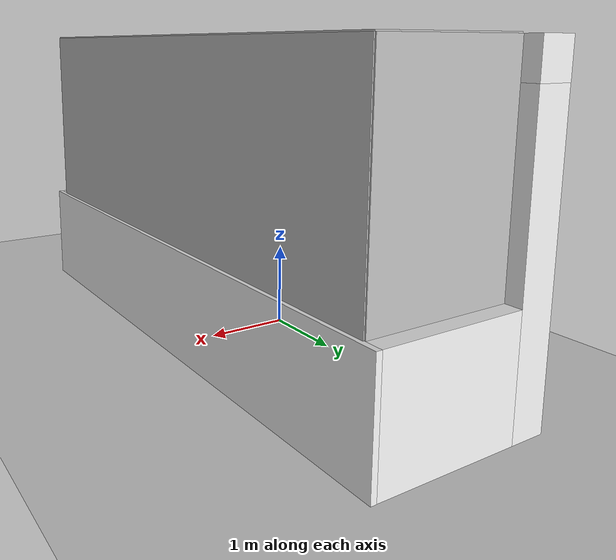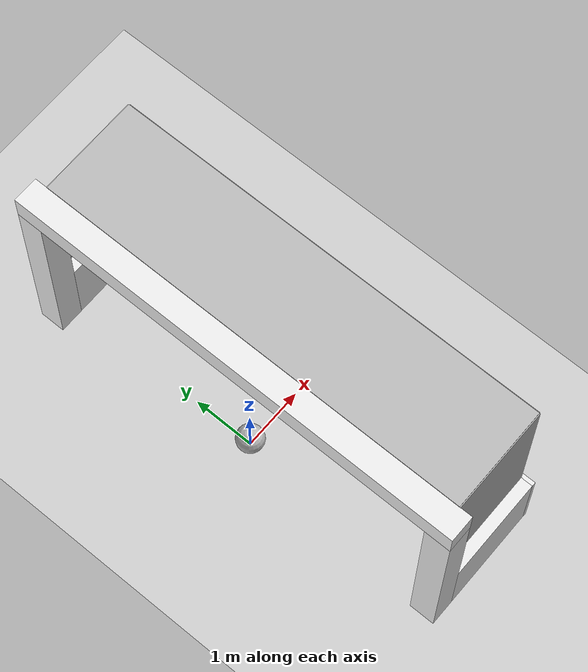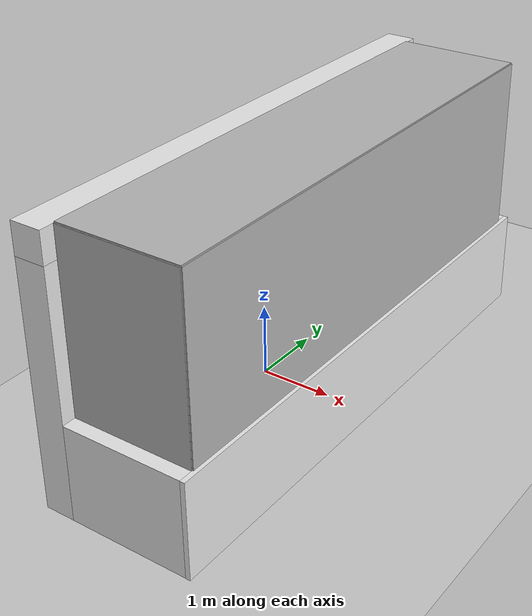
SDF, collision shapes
<?xml version="1.0" ?>
<sdf version="1.6">
  <model name="MSL_models15">
    <include>
      <uri>model://MSL_models15/RoboCup15_MSL_Field</uri>
    </include>
    <include>
      <uri>model://MSL_models15/RoboCup15_MSL_Football</uri>
    </include>
    <include>
      <uri>model://MSL_models15/RoboCup15_MSL_Goal</uri>
    </include>
  </model>
</sdf>

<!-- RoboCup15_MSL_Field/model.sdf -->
<sdf version="1.4">
  <model name="RoboCup15_MSL_Field">
    <static>true</static>

    <link name="field">
      <pose>0 0 0.01 0 0 0</pose>

      <!-- Main Field Collision -->
      <collision name="collision">
        <geometry>
          <plane>
            <normal>0 0 1</normal>
            <size>105 68</size>
          </plane>
        </geometry>
        <surface>
          <friction>
            <ode>
              <mu>100</mu>
              <mu2>50</mu2>
            </ode>
          </friction>
        </surface>
      </collision>

      <!-- Main Field Visual -->
      <visual name="carpet">
        <cast_shadows>false</cast_shadows>
        <geometry>
          <plane>
            <normal>0 0 1</normal>
            <size>105 68</size>
          </plane>
        </geometry>
        <material>
          <script>
            <uri>model://MSL_models15/RoboCup15_MSL_Field/materials/scripts/</uri>
            <uri>model://MSL_models15/RoboCup15_MSL_Field/materials/textures/</uri>
            <name>RoboCup/Carpet</name>
          </script>
        </material>
      </visual>

      <!-- Top Border -->
      <visual name="base1">
        <pose>0 34.75 0.01 0 0 0</pose>
        <cast_shadows>false</cast_shadows>
        <geometry>
          <plane>
            <normal>0 0 1</normal>
            <size>110 1.5</size>
          </plane>
        </geometry>
        <material>
          <script>
            <uri>model://MSL_models15/RoboCup15_MSL_Field/materials/scripts/</uri>
            <uri>model://MSL_models15/RoboCup15_MSL_Field/materials/textures/</uri>
            <name>RoboCup/FieldBorder</name>
          </script>
        </material>
      </visual>

      <!-- Bottom Border -->
      <visual name="base2">
        <pose>0 -34.75 0.01 0 0 0</pose>
        <cast_shadows>false</cast_shadows>
        <geometry>
          <plane>
            <normal>0 0 1</normal>
            <size>110 1.5</size>
          </plane>
        </geometry>
        <material>
          <script>
            <uri>model://MSL_models15/RoboCup15_MSL_Field/materials/scripts/</uri>
            <uri>model://MSL_models15/RoboCup15_MSL_Field/materials/textures/</uri>
            <name>RoboCup/FieldBorder</name>
          </script>
        </material>
      </visual>

      <!-- Right Border -->
      <visual name="base3">
        <pose>53.25 0 0.01 0 0 0</pose>
        <cast_shadows>false</cast_shadows>
        <geometry>
          <plane>
            <normal>0 0 1</normal>
            <size>1.5 70</size>
          </plane>
        </geometry>
        <material>
          <script>
            <uri>model://MSL_models15/RoboCup15_MSL_Field/materials/scripts/</uri>
            <uri>model://MSL_models15/RoboCup15_MSL_Field/materials/textures/</uri>
            <name>RoboCup/FieldBorder</name>
          </script>
        </material>
      </visual>

      <!-- Left Border -->
      <visual name="base4">
        <pose>-53.25 0 0.01 0 0 0</pose>
        <cast_shadows>false</cast_shadows>
        <geometry>
          <plane>
            <normal>0 0 1</normal>
            <size>1.5 70</size>
          </plane>
        </geometry>
        <material>
          <script>
            <uri>model://MSL_models15/RoboCup15_MSL_Field/materials/scripts/</uri>
            <uri>model://MSL_models15/RoboCup15_MSL_Field/materials/textures/</uri>
            <name>RoboCup/FieldBorder</name>
          </script>
        </material>
      </visual>

    </link>
  </model>
</sdf>

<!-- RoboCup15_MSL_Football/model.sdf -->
<sdf version='1.4'>

<model name='football'>
  <static>false</static>
  <link name='ball'>
    <pose>0 0 0.22 0 0 0</pose>

    <inertial>
      <mass>0.43</mass>
      <inertia>
        <ixx>0.0021</ixx>
        <iyy>0.0021</iyy>
        <izz>0.0021</izz>
        <ixy>0</ixy>
        <ixz>0</ixz>
        <iyz>0</iyz>
      </inertia>
    </inertial>

    <collision name='collision'>
      <geometry>
        <sphere>
          <radius>0.22</radius>
        </sphere>
      </geometry>
      <surface>
        <bounce>
          <restitution_coefficient>0.6</restitution_coefficient>
        </bounce>
        <friction>
          <ode>
            <mu>0.3</mu>
            <mu2>0.3</mu2>
          </ode>
        </friction>
      </surface>
    </collision>

    <visual name='visual'>
      <geometry>
        <mesh>
          <scale>0.22 0.22 0.22</scale>
          <uri>model://robocup_3Dsim_ball/meshes/ball.dae</uri>
        </mesh>
      </geometry>
    </visual>

    <velocity_decay>
      <linear>0.02</linear>
      <angular>0.02</angular>
    </velocity_decay>

    <gravity>true</gravity>

  </link>
</model>
</sdf>

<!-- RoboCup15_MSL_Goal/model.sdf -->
<sdf version="1.4">
  <model name="RoboCup15_MSL_Goal">
    <static>true</static>

    <link name="left_post">
      <pose>-0.203 3.453 1.625 0 0 0</pose>
      <collision name="collision">
        <geometry><box><size>0.41 0.41 3.25</size></box></geometry>
      </collision>
      <visual name="visual">
        <geometry><box><size>0.41 0.41 3.25</size></box></geometry>
        <material><script><uri>model://MSL_models15/RoboCup15_MSL_Goal/materials/scripts/gazebo.material</uri><name>Gazebo/White</name></script></material>
      </visual>
    </link>

    <link name="right_post">
      <pose>-0.203 -3.453 1.625 0 0 0</pose>
      <collision name="collision">
        <geometry><box><size>0.41 0.41 3.25</size></box></geometry>
      </collision>
      <visual name="visual">
        <geometry><box><size>0.41 0.41 3.25</size></box></geometry>
        <material><script><uri>model://MSL_models15/RoboCup15_MSL_Goal/materials/scripts/gazebo.material</uri><name>Gazebo/White</name></script></material>
      </visual>
    </link>

    <link name="crossbar">
      <pose>-0.203 0 3.453 0 0 0</pose>
      <collision name="collision">
        <geometry><box><size>0.41 7.32 0.41</size></box></geometry>
      </collision>
      <visual name="visual">
        <geometry><box><size>0.41 7.32 0.41</size></box></geometry>
        <material><script><uri>model://MSL_models15/RoboCup15_MSL_Goal/materials/scripts/gazebo.material</uri><name>Gazebo/White</name></script></material>
      </visual>
    </link>

    <link name="left_support_horiz_lower">
      <pose>0.813 3.453 0.650 0 0 0</pose>
      <collision name="collision">
        <geometry><box><size>1.63 0.41 1.30</size></box></geometry>
      </collision>
      <visual name="visual">
        <geometry><box><size>1.63 0.41 1.30</size></box></geometry>
        <material><script><uri>model://MSL_models15/RoboCup15_MSL_Goal/materials/scripts/gazebo.material</uri><name>Gazebo/White</name></script></material>
      </visual>
    </link>

    <link name="right_support_horiz_lower">
      <pose>0.813 -3.453 0.650 0 0 0</pose>
      <collision name="collision">
        <geometry><box><size>1.63 0.41 1.30</size></box></geometry>
      </collision>
      <visual name="visual">
        <geometry><box><size>1.63 0.41 1.30</size></box></geometry>
        <material><script><uri>model://MSL_models15/RoboCup15_MSL_Goal/materials/scripts/gazebo.material</uri><name>Gazebo/White</name></script></material>
      </visual>
    </link>

    <link name="center_support_horiz_lower">
      <pose>1.658 0 0.650 0 0 0</pose>
      <collision name="collision">
        <geometry><box><size>0.065 7.32 1.30</size></box></geometry>
      </collision>
      <visual name="visual">
        <geometry><box><size>0.065 7.32 1.30</size></box></geometry>
        <material><script><uri>model://MSL_models15/RoboCup15_MSL_Goal/materials/scripts/gazebo.material</uri><name>Gazebo/White</name></script></material>
      </visual>
    </link>

    <link name="center_net">
      <pose>1.625 0 2.478 0 0 0</pose>
      <collision name="collision">
        <geometry><box><size>0.033 6.91 2.36</size></box></geometry>
      </collision>
      <visual name="visual">
        <geometry><box><size>0.033 6.91 2.36</size></box></geometry>
        <material>
          <script>
            <uri>model://MSL_models15/RoboCup15_MSL_Goal/materials/scripts/</uri>
            <uri>model://MSL_models15/RoboCup15_MSL_Goal/materials/textures/</uri>
            <name>RoboCup/Net</name>
          </script>
        </material>
      </visual>
    </link>

    <link name="left_net">
      <pose>0.813 3.453 2.478 0 0 0</pose>
      <collision name="collision">
        <geometry><box><size>1.63 0.033 2.36</size></box></geometry>
      </collision>
      <visual name="visual">
        <geometry><box><size>1.63 0.033 2.36</size></box></geometry>
        <material>
          <script>
            <uri>model://MSL_models15/RoboCup15_MSL_Goal/materials/scripts/</uri>
            <uri>model://MSL_models15/RoboCup15_MSL_Goal/materials/textures/</uri>
            <name>RoboCup/Net</name>
          </script>
        </material>
      </visual>
    </link>

    <link name="right_net">
      <pose>0.813 -3.453 2.478 0 0 0</pose>
      <collision name="collision">
        <geometry><box><size>1.63 0.033 2.36</size></box></geometry>
      </collision>
      <visual name="visual">
        <geometry><box><size>1.63 0.033 2.36</size></box></geometry>
        <material>
          <script>
            <uri>model://MSL_models15/RoboCup15_MSL_Goal/materials/scripts/</uri>
            <uri>model://MSL_models15/RoboCup15_MSL_Goal/materials/textures/</uri>
            <name>RoboCup/Net</name>
          </script>
        </material>
      </visual>
    </link>

    <link name="upper_net">
      <pose>0.813 0 3.656 0 0 0</pose>
      <collision name="collision">
        <geometry><box><size>1.63 6.91 0.033</size></box></geometry>
      </collision>
      <visual name="visual">
        <geometry><box><size>1.63 6.91 0.033</size></box></geometry>
        <material>
          <script>
            <uri>model://MSL_models15/RoboCup15_MSL_Goal/materials/scripts/</uri>
            <uri>model://MSL_models15/RoboCup15_MSL_Goal/materials/textures/</uri>
            <name>RoboCup/Net</name>
          </script>
        </material>
      </visual>
    </link>

  </model>
</sdf>
